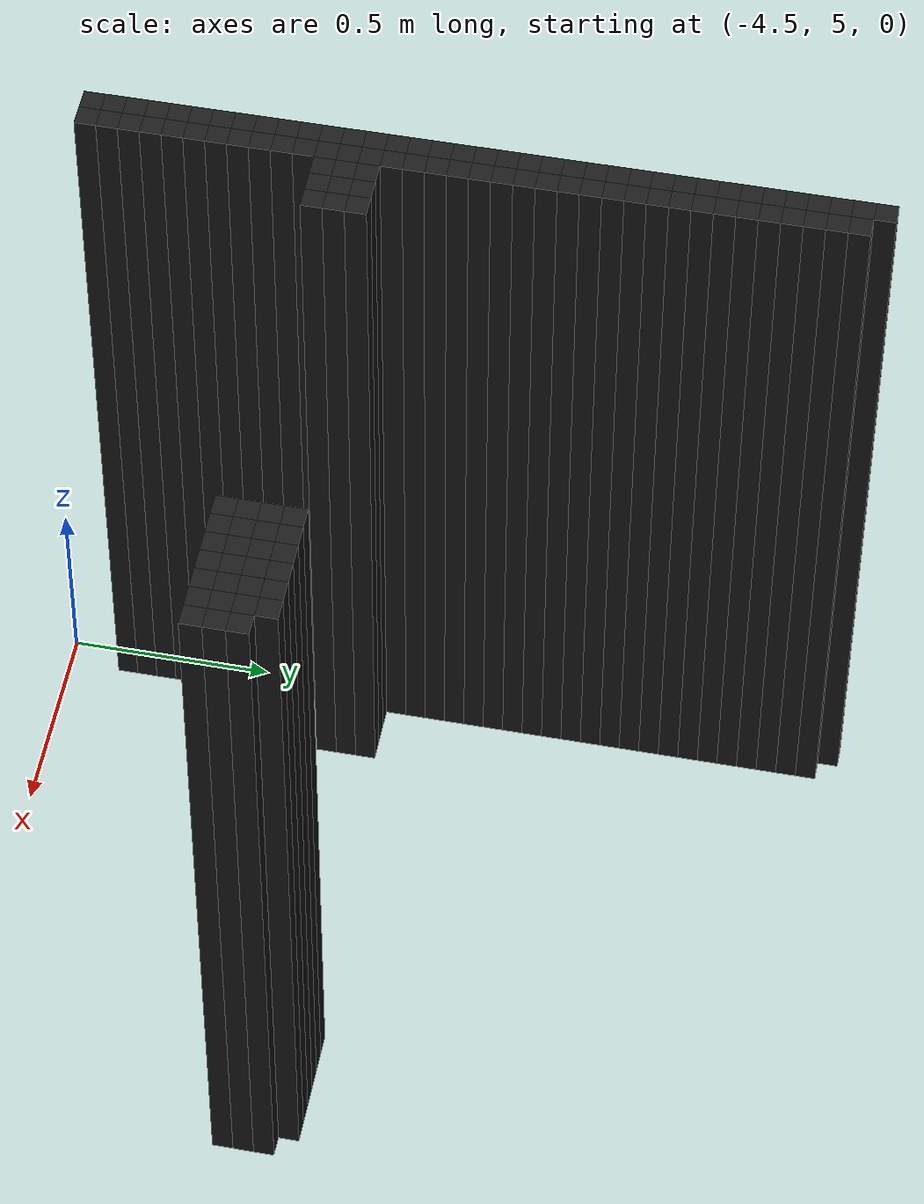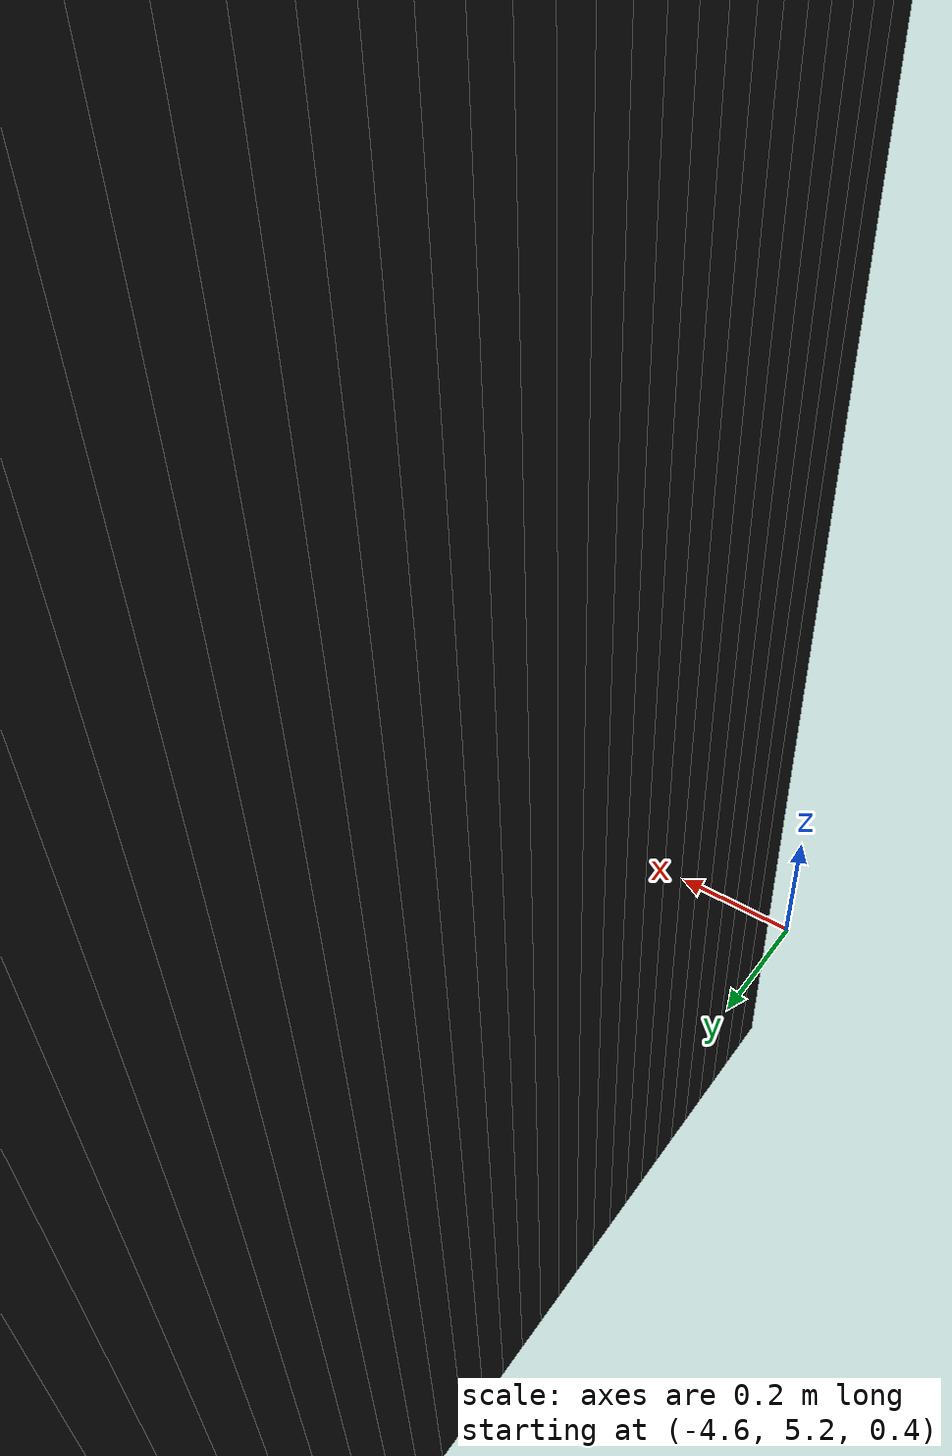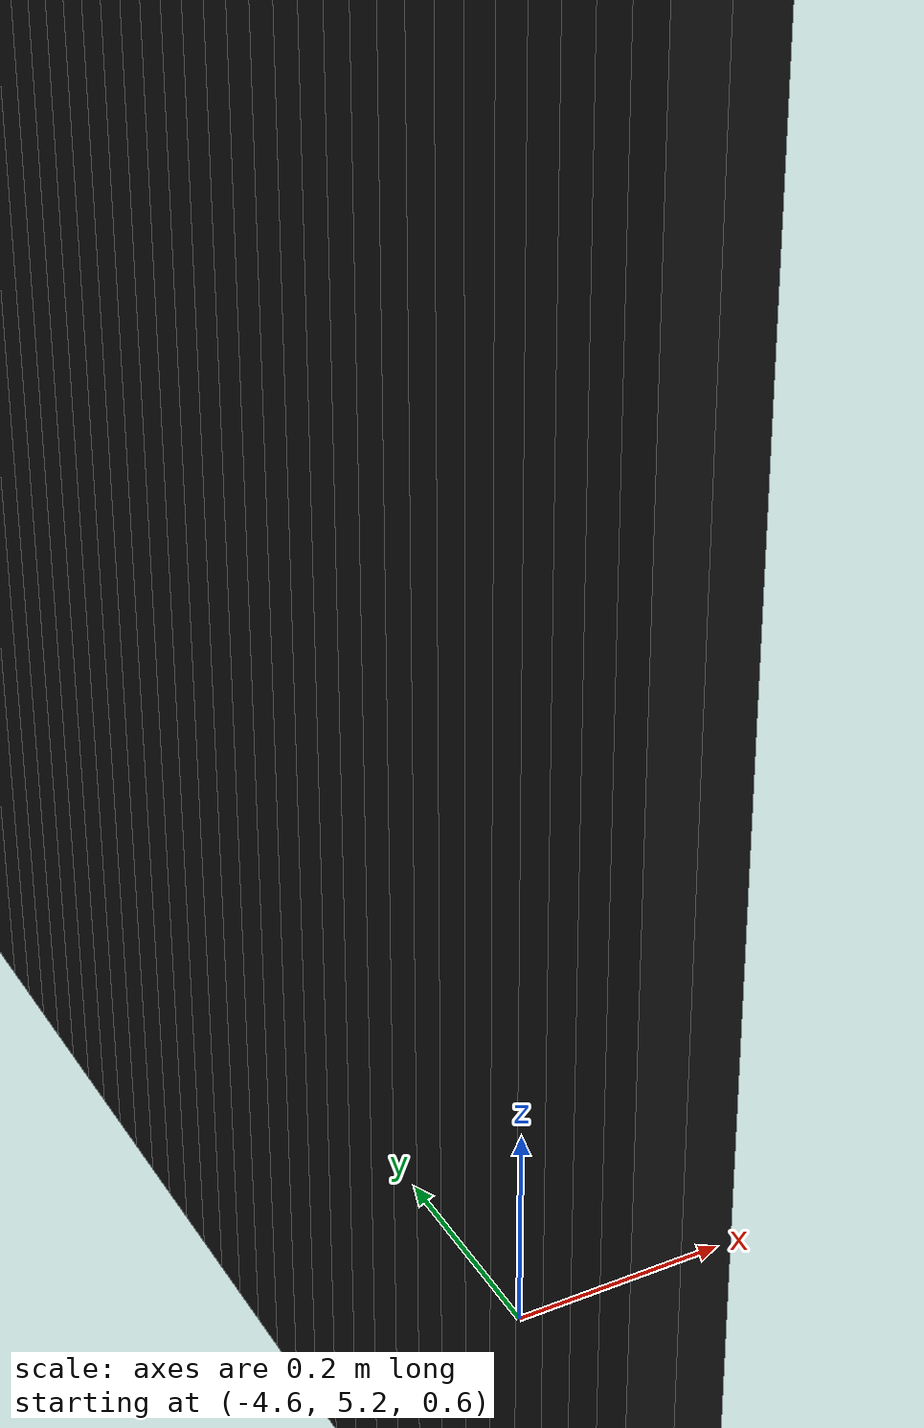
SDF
<sdf version="1.6">
 <model name="obstacle_0_28">
  <pose>-4.51 6.95 1.0 0 0 0</pose>
  <static>true</static>
  <link name="box_link">
   <collision name="box_collision"><geometry><box><size>0.05 0.05 2.0</size></box></geometry></collision>
   <visual name="box_visual">
    <geometry><box><size>0.05 0.05 2.0</size></box></geometry>
    <material><ambient>0 0 0 1</ambient><diffuse>0.1 0.1 0.1 1</diffuse></material>
   </visual>
  </link>
 </model>
 <model name="obstacle_0_29">
  <pose>-4.51 6.8999999999999995 1.0 0 0 0</pose>
  <static>true</static>
  <link name="box_link">
   <collision name="box_collision"><geometry><box><size>0.05 0.05 2.0</size></box></geometry></collision>
   <visual name="box_visual">
    <geometry><box><size>0.05 0.05 2.0</size></box></geometry>
    <material><ambient>0 0 0 1</ambient><diffuse>0.1 0.1 0.1 1</diffuse></material>
   </visual>
  </link>
 </model>
 <model name="obstacle_1_29">
  <pose>-4.46 6.8999999999999995 1.0 0 0 0</pose>
  <static>true</static>
  <link name="box_link">
   <collision name="box_collision"><geometry><box><size>0.05 0.05 2.0</size></box></geometry></collision>
   <visual name="box_visual">
    <geometry><box><size>0.05 0.05 2.0</size></box></geometry>
    <material><ambient>0 0 0 1</ambient><diffuse>0.1 0.1 0.1 1</diffuse></material>
   </visual>
  </link>
 </model>
 <model name="obstacle_0_30">
  <pose>-4.51 6.8500000000000005 1.0 0 0 0</pose>
  <static>true</static>
  <link name="box_link">
   <collision name="box_collision"><geometry><box><size>0.05 0.05 2.0</size></box></geometry></collision>
   <visual name="box_visual">
    <geometry><box><size>0.05 0.05 2.0</size></box></geometry>
    <material><ambient>0 0 0 1</ambient><diffuse>0.1 0.1 0.1 1</diffuse></material>
   </visual>
  </link>
 </model>
 <model name="obstacle_1_30">
  <pose>-4.46 6.8500000000000005 1.0 0 0 0</pose>
  <static>true</static>
  <link name="box_link">
   <collision name="box_collision"><geometry><box><size>0.05 0.05 2.0</size></box></geometry></collision>
   <visual name="box_visual">
    <geometry><box><size>0.05 0.05 2.0</size></box></geometry>
    <material><ambient>0 0 0 1</ambient><diffuse>0.1 0.1 0.1 1</diffuse></material>
   </visual>
  </link>
 </model>
 <model name="obstacle_0_31">
  <pose>-4.51 6.8 1.0 0 0 0</pose>
  <static>true</static>
  <link name="box_link">
   <collision name="box_collision"><geometry><box><size>0.05 0.05 2.0</size></box></geometry></collision>
   <visual name="box_visual">
    <geometry><box><size>0.05 0.05 2.0</size></box></geometry>
    <material><ambient>0 0 0 1</ambient><diffuse>0.1 0.1 0.1 1</diffuse></material>
   </visual>
  </link>
 </model>
 <model name="obstacle_1_31">
  <pose>-4.46 6.8 1.0 0 0 0</pose>
  <static>true</static>
  <link name="box_link">
   <collision name="box_collision"><geometry><box><size>0.05 0.05 2.0</size></box></geometry></collision>
   <visual name="box_visual">
    <geometry><box><size>0.05 0.05 2.0</size></box></geometry>
    <material><ambient>0 0 0 1</ambient><diffuse>0.1 0.1 0.1 1</diffuse></material>
   </visual>
  </link>
 </model>
 <model name="obstacle_0_32">
  <pose>-4.51 6.750000000000001 1.0 0 0 0</pose>
  <static>true</static>
  <link name="box_link">
   <collision name="box_collision"><geometry><box><size>0.05 0.05 2.0</size></box></geometry></collision>
   <visual name="box_visual">
    <geometry><box><size>0.05 0.05 2.0</size></box></geometry>
    <material><ambient>0 0 0 1</ambient><diffuse>0.1 0.1 0.1 1</diffuse></material>
   </visual>
  </link>
 </model>
 <model name="obstacle_1_32">
  <pose>-4.46 6.750000000000001 1.0 0 0 0</pose>
  <static>true</static>
  <link name="box_link">
   <collision name="box_collision"><geometry><box><size>0.05 0.05 2.0</size></box></geometry></collision>
   <visual name="box_visual">
    <geometry><box><size>0.05 0.05 2.0</size></box></geometry>
    <material><ambient>0 0 0 1</ambient><diffuse>0.1 0.1 0.1 1</diffuse></material>
   </visual>
  </link>
 </model>
 <model name="obstacle_0_33">
  <pose>-4.51 6.7 1.0 0 0 0</pose>
  <static>true</static>
  <link name="box_link">
   <collision name="box_collision"><geometry><box><size>0.05 0.05 2.0</size></box></geometry></collision>
   <visual name="box_visual">
    <geometry><box><size>0.05 0.05 2.0</size></box></geometry>
    <material><ambient>0 0 0 1</ambient><diffuse>0.1 0.1 0.1 1</diffuse></material>
   </visual>
  </link>
 </model>
 <model name="obstacle_1_33">
  <pose>-4.46 6.7 1.0 0 0 0</pose>
  <static>true</static>
  <link name="box_link">
   <collision name="box_collision"><geometry><box><size>0.05 0.05 2.0</size></box></geometry></collision>
   <visual name="box_visual">
    <geometry><box><size>0.05 0.05 2.0</size></box></geometry>
    <material><ambient>0 0 0 1</ambient><diffuse>0.1 0.1 0.1 1</diffuse></material>
   </visual>
  </link>
 </model>
 <model name="obstacle_0_34">
  <pose>-4.51 6.6499999999999995 1.0 0 0 0</pose>
  <static>true</static>
  <link name="box_link">
   <collision name="box_collision"><geometry><box><size>0.05 0.05 2.0</size></box></geometry></collision>
   <visual name="box_visual">
    <geometry><box><size>0.05 0.05 2.0</size></box></geometry>
    <material><ambient>0 0 0 1</ambient><diffuse>0.1 0.1 0.1 1</diffuse></material>
   </visual>
  </link>
 </model>
 <model name="obstacle_1_34">
  <pose>-4.46 6.6499999999999995 1.0 0 0 0</pose>
  <static>true</static>
  <link name="box_link">
   <collision name="box_collision"><geometry><box><size>0.05 0.05 2.0</size></box></geometry></collision>
   <visual name="box_visual">
    <geometry><box><size>0.05 0.05 2.0</size></box></geometry>
    <material><ambient>0 0 0 1</ambient><diffuse>0.1 0.1 0.1 1</diffuse></material>
   </visual>
  </link>
 </model>
 <model name="obstacle_0_35">
  <pose>-4.51 6.6000000000000005 1.0 0 0 0</pose>
  <static>true</static>
  <link name="box_link">
   <collision name="box_collision"><geometry><box><size>0.05 0.05 2.0</size></box></geometry></collision>
   <visual name="box_visual">
    <geometry><box><size>0.05 0.05 2.0</size></box></geometry>
    <material><ambient>0 0 0 1</ambient><diffuse>0.1 0.1 0.1 1</diffuse></material>
   </visual>
  </link>
 </model>
 <model name="obstacle_1_35">
  <pose>-4.46 6.6000000000000005 1.0 0 0 0</pose>
  <static>true</static>
  <link name="box_link">
   <collision name="box_collision"><geometry><box><size>0.05 0.05 2.0</size></box></geometry></collision>
   <visual name="box_visual">
    <geometry><box><size>0.05 0.05 2.0</size></box></geometry>
    <material><ambient>0 0 0 1</ambient><diffuse>0.1 0.1 0.1 1</diffuse></material>
   </visual>
  </link>
 </model>
 <model name="obstacle_0_36">
  <pose>-4.51 6.55 1.0 0 0 0</pose>
  <static>true</static>
  <link name="box_link">
   <collision name="box_collision"><geometry><box><size>0.05 0.05 2.0</size></box></geometry></collision>
   <visual name="box_visual">
    <geometry><box><size>0.05 0.05 2.0</size></box></geometry>
    <material><ambient>0 0 0 1</ambient><diffuse>0.1 0.1 0.1 1</diffuse></material>
   </visual>
  </link>
 </model>
 <model name="obstacle_1_36">
  <pose>-4.46 6.55 1.0 0 0 0</pose>
  <static>true</static>
  <link name="box_link">
   <collision name="box_collision"><geometry><box><size>0.05 0.05 2.0</size></box></geometry></collision>
   <visual name="box_visual">
    <geometry><box><size>0.05 0.05 2.0</size></box></geometry>
    <material><ambient>0 0 0 1</ambient><diffuse>0.1 0.1 0.1 1</diffuse></material>
   </visual>
  </link>
 </model>
 <model name="obstacle_0_37">
  <pose>-4.51 6.500000000000001 1.0 0 0 0</pose>
  <static>true</static>
  <link name="box_link">
   <collision name="box_collision"><geometry><box><size>0.05 0.05 2.0</size></box></geometry></collision>
   <visual name="box_visual">
    <geometry><box><size>0.05 0.05 2.0</size></box></geometry>
    <material><ambient>0 0 0 1</ambient><diffuse>0.1 0.1 0.1 1</diffuse></material>
   </visual>
  </link>
 </model>
 <model name="obstacle_1_37">
  <pose>-4.46 6.500000000000001 1.0 0 0 0</pose>
  <static>true</static>
  <link name="box_link">
   <collision name="box_collision"><geometry><box><size>0.05 0.05 2.0</size></box></geometry></collision>
   <visual name="box_visual">
    <geometry><box><size>0.05 0.05 2.0</size></box></geometry>
    <material><ambient>0 0 0 1</ambient><diffuse>0.1 0.1 0.1 1</diffuse></material>
   </visual>
  </link>
 </model>
 <model name="obstacle_0_38">
  <pose>-4.51 6.45 1.0 0 0 0</pose>
  <static>true</static>
  <link name="box_link">
   <collision name="box_collision"><geometry><box><size>0.05 0.05 2.0</size></box></geometry></collision>
   <visual name="box_visual">
    <geometry><box><size>0.05 0.05 2.0</size></box></geometry>
    <material><ambient>0 0 0 1</ambient><diffuse>0.1 0.1 0.1 1</diffuse></material>
   </visual>
  </link>
 </model>
 <model name="obstacle_1_38">
  <pose>-4.46 6.45 1.0 0 0 0</pose>
  <static>true</static>
  <link name="box_link">
   <collision name="box_collision"><geometry><box><size>0.05 0.05 2.0</size></box></geometry></collision>
   <visual name="box_visual">
    <geometry><box><size>0.05 0.05 2.0</size></box></geometry>
    <material><ambient>0 0 0 1</ambient><diffuse>0.1 0.1 0.1 1</diffuse></material>
   </visual>
  </link>
 </model>
 <model name="obstacle_0_39">
  <pose>-4.51 6.3999999999999995 1.0 0 0 0</pose>
  <static>true</static>
  <link name="box_link">
   <collision name="box_collision"><geometry><box><size>0.05 0.05 2.0</size></box></geometry></collision>
   <visual name="box_visual">
    <geometry><box><size>0.05 0.05 2.0</size></box></geometry>
    <material><ambient>0 0 0 1</ambient><diffuse>0.1 0.1 0.1 1</diffuse></material>
   </visual>
  </link>
 </model>
 <model name="obstacle_1_39">
  <pose>-4.46 6.3999999999999995 1.0 0 0 0</pose>
  <static>true</static>
  <link name="box_link">
   <collision name="box_collision"><geometry><box><size>0.05 0.05 2.0</size></box></geometry></collision>
   <visual name="box_visual">
    <geometry><box><size>0.05 0.05 2.0</size></box></geometry>
    <material><ambient>0 0 0 1</ambient><diffuse>0.1 0.1 0.1 1</diffuse></material>
   </visual>
  </link>
 </model>
 <model name="obstacle_0_40">
  <pose>-4.51 6.3500000000000005 1.0 0 0 0</pose>
  <static>true</static>
  <link name="box_link">
   <collision name="box_collision"><geometry><box><size>0.05 0.05 2.0</size></box></geometry></collision>
   <visual name="box_visual">
    <geometry><box><size>0.05 0.05 2.0</size></box></geometry>
    <material><ambient>0 0 0 1</ambient><diffuse>0.1 0.1 0.1 1</diffuse></material>
   </visual>
  </link>
 </model>
 <model name="obstacle_1_40">
  <pose>-4.46 6.3500000000000005 1.0 0 0 0</pose>
  <static>true</static>
  <link name="box_link">
   <collision name="box_collision"><geometry><box><size>0.05 0.05 2.0</size></box></geometry></collision>
   <visual name="box_visual">
    <geometry><box><size>0.05 0.05 2.0</size></box></geometry>
    <material><ambient>0 0 0 1</ambient><diffuse>0.1 0.1 0.1 1</diffuse></material>
   </visual>
  </link>
 </model>
 <model name="obstacle_0_41">
  <pose>-4.51 6.3 1.0 0 0 0</pose>
  <static>true</static>
  <link name="box_link">
   <collision name="box_collision"><geometry><box><size>0.05 0.05 2.0</size></box></geometry></collision>
   <visual name="box_visual">
    <geometry><box><size>0.05 0.05 2.0</size></box></geometry>
    <material><ambient>0 0 0 1</ambient><diffuse>0.1 0.1 0.1 1</diffuse></material>
   </visual>
  </link>
 </model>
 <model name="obstacle_1_41">
  <pose>-4.46 6.3 1.0 0 0 0</pose>
  <static>true</static>
  <link name="box_link">
   <collision name="box_collision"><geometry><box><size>0.05 0.05 2.0</size></box></geometry></collision>
   <visual name="box_visual">
    <geometry><box><size>0.05 0.05 2.0</size></box></geometry>
    <material><ambient>0 0 0 1</ambient><diffuse>0.1 0.1 0.1 1</diffuse></material>
   </visual>
  </link>
 </model>
 <model name="obstacle_0_42">
  <pose>-4.51 6.250000000000001 1.0 0 0 0</pose>
  <static>true</static>
  <link name="box_link">
   <collision name="box_collision"><geometry><box><size>0.05 0.05 2.0</size></box></geometry></collision>
   <visual name="box_visual">
    <geometry><box><size>0.05 0.05 2.0</size></box></geometry>
    <material><ambient>0 0 0 1</ambient><diffuse>0.1 0.1 0.1 1</diffuse></material>
   </visual>
  </link>
 </model>
 <model name="obstacle_1_42">
  <pose>-4.46 6.250000000000001 1.0 0 0 0</pose>
  <static>true</static>
  <link name="box_link">
   <collision name="box_collision"><geometry><box><size>0.05 0.05 2.0</size></box></geometry></collision>
   <visual name="box_visual">
    <geometry><box><size>0.05 0.05 2.0</size></box></geometry>
    <material><ambient>0 0 0 1</ambient><diffuse>0.1 0.1 0.1 1</diffuse></material>
   </visual>
  </link>
 </model>
 <model name="obstacle_0_43">
  <pose>-4.51 6.2 1.0 0 0 0</pose>
  <static>true</static>
  <link name="box_link">
   <collision name="box_collision"><geometry><box><size>0.05 0.05 2.0</size></box></geometry></collision>
   <visual name="box_visual">
    <geometry><box><size>0.05 0.05 2.0</size></box></geometry>
    <material><ambient>0 0 0 1</ambient><diffuse>0.1 0.1 0.1 1</diffuse></material>
   </visual>
  </link>
 </model>
 <model name="obstacle_1_43">
  <pose>-4.46 6.2 1.0 0 0 0</pose>
  <static>true</static>
  <link name="box_link">
   <collision name="box_collision"><geometry><box><size>0.05 0.05 2.0</size></box></geometry></collision>
   <visual name="box_visual">
    <geometry><box><size>0.05 0.05 2.0</size></box></geometry>
    <material><ambient>0 0 0 1</ambient><diffuse>0.1 0.1 0.1 1</diffuse></material>
   </visual>
  </link>
 </model>
 <model name="obstacle_0_44">
  <pose>-4.51 6.1499999999999995 1.0 0 0 0</pose>
  <static>true</static>
  <link name="box_link">
   <collision name="box_collision"><geometry><box><size>0.05 0.05 2.0</size></box></geometry></collision>
   <visual name="box_visual">
    <geometry><box><size>0.05 0.05 2.0</size></box></geometry>
    <material><ambient>0 0 0 1</ambient><diffuse>0.1 0.1 0.1 1</diffuse></material>
   </visual>
  </link>
 </model>
 <model name="obstacle_1_44">
  <pose>-4.46 6.1499999999999995 1.0 0 0 0</pose>
  <static>true</static>
  <link name="box_link">
   <collision name="box_collision"><geometry><box><size>0.05 0.05 2.0</size></box></geometry></collision>
   <visual name="box_visual">
    <geometry><box><size>0.05 0.05 2.0</size></box></geometry>
    <material><ambient>0 0 0 1</ambient><diffuse>0.1 0.1 0.1 1</diffuse></material>
   </visual>
  </link>
 </model>
 <model name="obstacle_0_45">
  <pose>-4.51 6.1000000000000005 1.0 0 0 0</pose>
  <static>true</static>
  <link name="box_link">
   <collision name="box_collision"><geometry><box><size>0.05 0.05 2.0</size></box></geometry></collision>
   <visual name="box_visual">
    <geometry><box><size>0.05 0.05 2.0</size></box></geometry>
    <material><ambient>0 0 0 1</ambient><diffuse>0.1 0.1 0.1 1</diffuse></material>
   </visual>
  </link>
 </model>
 <model name="obstacle_1_45">
  <pose>-4.46 6.1000000000000005 1.0 0 0 0</pose>
  <static>true</static>
  <link name="box_link">
   <collision name="box_collision"><geometry><box><size>0.05 0.05 2.0</size></box></geometry></collision>
   <visual name="box_visual">
    <geometry><box><size>0.05 0.05 2.0</size></box></geometry>
    <material><ambient>0 0 0 1</ambient><diffuse>0.1 0.1 0.1 1</diffuse></material>
   </visual>
  </link>
 </model>
 <model name="obstacle_0_46">
  <pose>-4.51 6.05 1.0 0 0 0</pose>
  <static>true</static>
  <link name="box_link">
   <collision name="box_collision"><geometry><box><size>0.05 0.05 2.0</size></box></geometry></collision>
   <visual name="box_visual">
    <geometry><box><size>0.05 0.05 2.0</size></box></geometry>
    <material><ambient>0 0 0 1</ambient><diffuse>0.1 0.1 0.1 1</diffuse></material>
   </visual>
  </link>
 </model>
 <model name="obstacle_1_46">
  <pose>-4.46 6.05 1.0 0 0 0</pose>
  <static>true</static>
  <link name="box_link">
   <collision name="box_collision"><geometry><box><size>0.05 0.05 2.0</size></box></geometry></collision>
   <visual name="box_visual">
    <geometry><box><size>0.05 0.05 2.0</size></box></geometry>
    <material><ambient>0 0 0 1</ambient><diffuse>0.1 0.1 0.1 1</diffuse></material>
   </visual>
  </link>
 </model>
 <model name="obstacle_0_47">
  <pose>-4.51 6.000000000000001 1.0 0 0 0</pose>
  <static>true</static>
  <link name="box_link">
   <collision name="box_collision"><geometry><box><size>0.05 0.05 2.0</size></box></geometry></collision>
   <visual name="box_visual">
    <geometry><box><size>0.05 0.05 2.0</size></box></geometry>
    <material><ambient>0 0 0 1</ambient><diffuse>0.1 0.1 0.1 1</diffuse></material>
   </visual>
  </link>
 </model>
 <model name="obstacle_1_47">
  <pose>-4.46 6.000000000000001 1.0 0 0 0</pose>
  <static>true</static>
  <link name="box_link">
   <collision name="box_collision"><geometry><box><size>0.05 0.05 2.0</size></box></geometry></collision>
   <visual name="box_visual">
    <geometry><box><size>0.05 0.05 2.0</size></box></geometry>
    <material><ambient>0 0 0 1</ambient><diffuse>0.1 0.1 0.1 1</diffuse></material>
   </visual>
  </link>
 </model>
 <model name="obstacle_0_48">
  <pose>-4.51 5.95 1.0 0 0 0</pose>
  <static>true</static>
  <link name="box_link">
   <collision name="box_collision"><geometry><box><size>0.05 0.05 2.0</size></box></geometry></collision>
   <visual name="box_visual">
    <geometry><box><size>0.05 0.05 2.0</size></box></geometry>
    <material><ambient>0 0 0 1</ambient><diffuse>0.1 0.1 0.1 1</diffuse></material>
   </visual>
  </link>
 </model>
 <model name="obstacle_1_48">
  <pose>-4.46 5.95 1.0 0 0 0</pose>
  <static>true</static>
  <link name="box_link">
   <collision name="box_collision"><geometry><box><size>0.05 0.05 2.0</size></box></geometry></collision>
   <visual name="box_visual">
    <geometry><box><size>0.05 0.05 2.0</size></box></geometry>
    <material><ambient>0 0 0 1</ambient><diffuse>0.1 0.1 0.1 1</diffuse></material>
   </visual>
  </link>
 </model>
 <model name="obstacle_0_49">
  <pose>-4.51 5.8999999999999995 1.0 0 0 0</pose>
  <static>true</static>
  <link name="box_link">
   <collision name="box_collision"><geometry><box><size>0.05 0.05 2.0</size></box></geometry></collision>
   <visual name="box_visual">
    <geometry><box><size>0.05 0.05 2.0</size></box></geometry>
    <material><ambient>0 0 0 1</ambient><diffuse>0.1 0.1 0.1 1</diffuse></material>
   </visual>
  </link>
 </model>
 <model name="obstacle_1_49">
  <pose>-4.46 5.8999999999999995 1.0 0 0 0</pose>
  <static>true</static>
  <link name="box_link">
   <collision name="box_collision"><geometry><box><size>0.05 0.05 2.0</size></box></geometry></collision>
   <visual name="box_visual">
    <geometry><box><size>0.05 0.05 2.0</size></box></geometry>
    <material><ambient>0 0 0 1</ambient><diffuse>0.1 0.1 0.1 1</diffuse></material>
   </visual>
  </link>
 </model>
 <model name="obstacle_0_50">
  <pose>-4.51 5.8500000000000005 1.0 0 0 0</pose>
  <static>true</static>
  <link name="box_link">
   <collision name="box_collision"><geometry><box><size>0.05 0.05 2.0</size></box></geometry></collision>
   <visual name="box_visual">
    <geometry><box><size>0.05 0.05 2.0</size></box></geometry>
    <material><ambient>0 0 0 1</ambient><diffuse>0.1 0.1 0.1 1</diffuse></material>
   </visual>
  </link>
 </model>
 <model name="obstacle_1_50">
  <pose>-4.46 5.8500000000000005 1.0 0 0 0</pose>
  <static>true</static>
  <link name="box_link">
   <collision name="box_collision"><geometry><box><size>0.05 0.05 2.0</size></box></geometry></collision>
   <visual name="box_visual">
    <geometry><box><size>0.05 0.05 2.0</size></box></geometry>
    <material><ambient>0 0 0 1</ambient><diffuse>0.1 0.1 0.1 1</diffuse></material>
   </visual>
  </link>
 </model>
 <model name="obstacle_22_50">
  <pose>-3.4099999999999997 5.8500000000000005 1.0 0 0 0</pose>
  <static>true</static>
  <link name="box_link">
   <collision name="box_collision"><geometry><box><size>0.05 0.05 2.0</size></box></geometry></collision>
   <visual name="box_visual">
    <geometry><box><size>0.05 0.05 2.0</size></box></geometry>
    <material><ambient>0 0 0 1</ambient><diffuse>0.1 0.1 0.1 1</diffuse></material>
   </visual>
  </link>
 </model>
 <model name="obstacle_23_50">
  <pose>-3.3599999999999994 5.8500000000000005 1.0 0 0 0</pose>
  <static>true</static>
  <link name="box_link">
   <collision name="box_collision"><geometry><box><size>0.05 0.05 2.0</size></box></geometry></collision>
   <visual name="box_visual">
    <geometry><box><size>0.05 0.05 2.0</size></box></geometry>
    <material><ambient>0 0 0 1</ambient><diffuse>0.1 0.1 0.1 1</diffuse></material>
   </visual>
  </link>
 </model>
 <model name="obstacle_24_50">
  <pose>-3.3099999999999996 5.8500000000000005 1.0 0 0 0</pose>
  <static>true</static>
  <link name="box_link">
   <collision name="box_collision"><geometry><box><size>0.05 0.05 2.0</size></box></geometry></collision>
   <visual name="box_visual">
    <geometry><box><size>0.05 0.05 2.0</size></box></geometry>
    <material><ambient>0 0 0 1</ambient><diffuse>0.1 0.1 0.1 1</diffuse></material>
   </visual>
  </link>
 </model>
 <model name="obstacle_25_50">
  <pose>-3.26 5.8500000000000005 1.0 0 0 0</pose>
  <static>true</static>
  <link name="box_link">
   <collision name="box_collision"><geometry><box><size>0.05 0.05 2.0</size></box></geometry></collision>
   <visual name="box_visual">
    <geometry><box><size>0.05 0.05 2.0</size></box></geometry>
    <material><ambient>0 0 0 1</ambient><diffuse>0.1 0.1 0.1 1</diffuse></material>
   </visual>
  </link>
 </model>
 <model name="obstacle_26_50">
  <pose>-3.21 5.8500000000000005 1.0 0 0 0</pose>
  <static>true</static>
  <link name="box_link">
   <collision name="box_collision"><geometry><box><size>0.05 0.05 2.0</size></box></geometry></collision>
   <visual name="box_visual">
    <geometry><box><size>0.05 0.05 2.0</size></box></geometry>
    <material><ambient>0 0 0 1</ambient><diffuse>0.1 0.1 0.1 1</diffuse></material>
   </visual>
  </link>
 </model>
 <model name="obstacle_27_50">
  <pose>-3.1599999999999997 5.8500000000000005 1.0 0 0 0</pose>
  <static>true</static>
  <link name="box_link">
   <collision name="box_collision"><geometry><box><size>0.05 0.05 2.0</size></box></geometry></collision>
   <visual name="box_visual">
    <geometry><box><size>0.05 0.05 2.0</size></box></geometry>
    <material><ambient>0 0 0 1</ambient><diffuse>0.1 0.1 0.1 1</diffuse></material>
   </visual>
  </link>
 </model>
 <model name="obstacle_0_51">
  <pose>-4.51 5.8 1.0 0 0 0</pose>
  <static>true</static>
  <link name="box_link">
   <collision name="box_collision"><geometry><box><size>0.05 0.05 2.0</size></box></geometry></collision>
   <visual name="box_visual">
    <geometry><box><size>0.05 0.05 2.0</size></box></geometry>
    <material><ambient>0 0 0 1</ambient><diffuse>0.1 0.1 0.1 1</diffuse></material>
   </visual>
  </link>
 </model>
 <model name="obstacle_1_51">
  <pose>-4.46 5.8 1.0 0 0 0</pose>
  <static>true</static>
  <link name="box_link">
   <collision name="box_collision"><geometry><box><size>0.05 0.05 2.0</size></box></geometry></collision>
   <visual name="box_visual">
    <geometry><box><size>0.05 0.05 2.0</size></box></geometry>
    <material><ambient>0 0 0 1</ambient><diffuse>0.1 0.1 0.1 1</diffuse></material>
   </visual>
  </link>
 </model>
 <model name="obstacle_2_51">
  <pose>-4.41 5.8 1.0 0 0 0</pose>
  <static>true</static>
  <link name="box_link">
   <collision name="box_collision"><geometry><box><size>0.05 0.05 2.0</size></box></geometry></collision>
   <visual name="box_visual">
    <geometry><box><size>0.05 0.05 2.0</size></box></geometry>
    <material><ambient>0 0 0 1</ambient><diffuse>0.1 0.1 0.1 1</diffuse></material>
   </visual>
  </link>
 </model>
 <model name="obstacle_3_51">
  <pose>-4.359999999999999 5.8 1.0 0 0 0</pose>
  <static>true</static>
  <link name="box_link">
   <collision name="box_collision"><geometry><box><size>0.05 0.05 2.0</size></box></geometry></collision>
   <visual name="box_visual">
    <geometry><box><size>0.05 0.05 2.0</size></box></geometry>
    <material><ambient>0 0 0 1</ambient><diffuse>0.1 0.1 0.1 1</diffuse></material>
   </visual>
  </link>
 </model>
 <model name="obstacle_4_51">
  <pose>-4.31 5.8 1.0 0 0 0</pose>
  <static>true</static>
  <link name="box_link">
   <collision name="box_collision"><geometry><box><size>0.05 0.05 2.0</size></box></geometry></collision>
   <visual name="box_visual">
    <geometry><box><size>0.05 0.05 2.0</size></box></geometry>
    <material><ambient>0 0 0 1</ambient><diffuse>0.1 0.1 0.1 1</diffuse></material>
   </visual>
  </link>
 </model>
 <model name="obstacle_22_51">
  <pose>-3.4099999999999997 5.8 1.0 0 0 0</pose>
  <static>true</static>
  <link name="box_link">
   <collision name="box_collision"><geometry><box><size>0.05 0.05 2.0</size></box></geometry></collision>
   <visual name="box_visual">
    <geometry><box><size>0.05 0.05 2.0</size></box></geometry>
    <material><ambient>0 0 0 1</ambient><diffuse>0.1 0.1 0.1 1</diffuse></material>
   </visual>
  </link>
 </model>
 <model name="obstacle_23_51">
  <pose>-3.3599999999999994 5.8 1.0 0 0 0</pose>
  <static>true</static>
  <link name="box_link">
   <collision name="box_collision"><geometry><box><size>0.05 0.05 2.0</size></box></geometry></collision>
   <visual name="box_visual">
    <geometry><box><size>0.05 0.05 2.0</size></box></geometry>
    <material><ambient>0 0 0 1</ambient><diffuse>0.1 0.1 0.1 1</diffuse></material>
   </visual>
  </link>
 </model>
 <model name="obstacle_24_51">
  <pose>-3.3099999999999996 5.8 1.0 0 0 0</pose>
  <static>true</static>
  <link name="box_link">
   <collision name="box_collision"><geometry><box><size>0.05 0.05 2.0</size></box></geometry></collision>
   <visual name="box_visual">
    <geometry><box><size>0.05 0.05 2.0</size></box></geometry>
    <material><ambient>0 0 0 1</ambient><diffuse>0.1 0.1 0.1 1</diffuse></material>
   </visual>
  </link>
 </model>
 <model name="obstacle_25_51">
  <pose>-3.26 5.8 1.0 0 0 0</pose>
  <static>true</static>
  <link name="box_link">
   <collision name="box_collision"><geometry><box><size>0.05 0.05 2.0</size></box></geometry></collision>
   <visual name="box_visual">
    <geometry><box><size>0.05 0.05 2.0</size></box></geometry>
    <material><ambient>0 0 0 1</ambient><diffuse>0.1 0.1 0.1 1</diffuse></material>
   </visual>
  </link>
 </model>
 <model name="obstacle_26_51">
  <pose>-3.21 5.8 1.0 0 0 0</pose>
  <static>true</static>
  <link name="box_link">
   <collision name="box_collision"><geometry><box><size>0.05 0.05 2.0</size></box></geometry></collision>
   <visual name="box_visual">
    <geometry><box><size>0.05 0.05 2.0</size></box></geometry>
    <material><ambient>0 0 0 1</ambient><diffuse>0.1 0.1 0.1 1</diffuse></material>
   </visual>
  </link>
 </model>
 <model name="obstacle_27_51">
  <pose>-3.1599999999999997 5.8 1.0 0 0 0</pose>
  <static>true</static>
  <link name="box_link">
   <collision name="box_collision"><geometry><box><size>0.05 0.05 2.0</size></box></geometry></collision>
   <visual name="box_visual">
    <geometry><box><size>0.05 0.05 2.0</size></box></geometry>
    <material><ambient>0 0 0 1</ambient><diffuse>0.1 0.1 0.1 1</diffuse></material>
   </visual>
  </link>
 </model>
 <model name="obstacle_28_51">
  <pose>-3.1099999999999994 5.8 1.0 0 0 0</pose>
  <static>true</static>
  <link name="box_link">
   <collision name="box_collision"><geometry><box><size>0.05 0.05 2.0</size></box></geometry></collision>
   <visual name="box_visual">
    <geometry><box><size>0.05 0.05 2.0</size></box></geometry>
    <material><ambient>0 0 0 1</ambient><diffuse>0.1 0.1 0.1 1</diffuse></material>
   </visual>
  </link>
 </model>
 <model name="obstacle_0_52">
  <pose>-4.51 5.75 1.0 0 0 0</pose>
  <static>true</static>
  <link name="box_link">
   <collision name="box_collision"><geometry><box><size>0.05 0.05 2.0</size></box></geometry></collision>
   <visual name="box_visual">
    <geometry><box><size>0.05 0.05 2.0</size></box></geometry>
    <material><ambient>0 0 0 1</ambient><diffuse>0.1 0.1 0.1 1</diffuse></material>
   </visual>
  </link>
 </model>
 <model name="obstacle_1_52">
  <pose>-4.46 5.75 1.0 0 0 0</pose>
  <static>true</static>
  <link name="box_link">
   <collision name="box_collision"><geometry><box><size>0.05 0.05 2.0</size></box></geometry></collision>
   <visual name="box_visual">
    <geometry><box><size>0.05 0.05 2.0</size></box></geometry>
    <material><ambient>0 0 0 1</ambient><diffuse>0.1 0.1 0.1 1</diffuse></material>
   </visual>
  </link>
 </model>
 <model name="obstacle_2_52">
  <pose>-4.41 5.75 1.0 0 0 0</pose>
  <static>true</static>
  <link name="box_link">
   <collision name="box_collision"><geometry><box><size>0.05 0.05 2.0</size></box></geometry></collision>
   <visual name="box_visual">
    <geometry><box><size>0.05 0.05 2.0</size></box></geometry>
    <material><ambient>0 0 0 1</ambient><diffuse>0.1 0.1 0.1 1</diffuse></material>
   </visual>
  </link>
 </model>
 <model name="obstacle_3_52">
  <pose>-4.359999999999999 5.75 1.0 0 0 0</pose>
  <static>true</static>
  <link name="box_link">
   <collision name="box_collision"><geometry><box><size>0.05 0.05 2.0</size></box></geometry></collision>
   <visual name="box_visual">
    <geometry><box><size>0.05 0.05 2.0</size></box></geometry>
    <material><ambient>0 0 0 1</ambient><diffuse>0.1 0.1 0.1 1</diffuse></material>
   </visual>
  </link>
 </model>
 <model name="obstacle_4_52">
  <pose>-4.31 5.75 1.0 0 0 0</pose>
  <static>true</static>
  <link name="box_link">
   <collision name="box_collision"><geometry><box><size>0.05 0.05 2.0</size></box></geometry></collision>
   <visual name="box_visual">
    <geometry><box><size>0.05 0.05 2.0</size></box></geometry>
    <material><ambient>0 0 0 1</ambient><diffuse>0.1 0.1 0.1 1</diffuse></material>
   </visual>
  </link>
 </model>
 <model name="obstacle_22_52">
  <pose>-3.4099999999999997 5.75 1.0 0 0 0</pose>
  <static>true</static>
  <link name="box_link">
   <collision name="box_collision"><geometry><box><size>0.05 0.05 2.0</size></box></geometry></collision>
   <visual name="box_visual">
    <geometry><box><size>0.05 0.05 2.0</size></box></geometry>
    <material><ambient>0 0 0 1</ambient><diffuse>0.1 0.1 0.1 1</diffuse></material>
   </visual>
  </link>
 </model>
 <model name="obstacle_23_52">
  <pose>-3.3599999999999994 5.75 1.0 0 0 0</pose>
  <static>true</static>
  <link name="box_link">
   <collision name="box_collision"><geometry><box><size>0.05 0.05 2.0</size></box></geometry></collision>
   <visual name="box_visual">
    <geometry><box><size>0.05 0.05 2.0</size></box></geometry>
    <material><ambient>0 0 0 1</ambient><diffuse>0.1 0.1 0.1 1</diffuse></material>
   </visual>
  </link>
 </model>
 <model name="obstacle_24_52">
  <pose>-3.3099999999999996 5.75 1.0 0 0 0</pose>
  <static>true</static>
  <link name="box_link">
   <collision name="box_collision"><geometry><box><size>0.05 0.05 2.0</size></box></geometry></collision>
   <visual name="box_visual">
    <geometry><box><size>0.05 0.05 2.0</size></box></geometry>
    <material><ambient>0 0 0 1</ambient><diffuse>0.1 0.1 0.1 1</diffuse></material>
   </visual>
  </link>
 </model>
 <model name="obstacle_25_52">
  <pose>-3.26 5.75 1.0 0 0 0</pose>
  <static>true</static>
  <link name="box_link">
   <collision name="box_collision"><geometry><box><size>0.05 0.05 2.0</size></box></geometry></collision>
   <visual name="box_visual">
    <geometry><box><size>0.05 0.05 2.0</size></box></geometry>
    <material><ambient>0 0 0 1</ambient><diffuse>0.1 0.1 0.1 1</diffuse></material>
   </visual>
  </link>
 </model>
 <model name="obstacle_26_52">
  <pose>-3.21 5.75 1.0 0 0 0</pose>
  <static>true</static>
  <link name="box_link">
   <collision name="box_collision"><geometry><box><size>0.05 0.05 2.0</size></box></geometry></collision>
   <visual name="box_visual">
    <geometry><box><size>0.05 0.05 2.0</size></box></geometry>
    <material><ambient>0 0 0 1</ambient><diffuse>0.1 0.1 0.1 1</diffuse></material>
   </visual>
  </link>
 </model>
 <model name="obstacle_27_52">
  <pose>-3.1599999999999997 5.75 1.0 0 0 0</pose>
  <static>true</static>
  <link name="box_link">
   <collision name="box_collision"><geometry><box><size>0.05 0.05 2.0</size></box></geometry></collision>
   <visual name="box_visual">
    <geometry><box><size>0.05 0.05 2.0</size></box></geometry>
    <material><ambient>0 0 0 1</ambient><diffuse>0.1 0.1 0.1 1</diffuse></material>
   </visual>
  </link>
 </model>
 <model name="obstacle_28_52">
  <pose>-3.1099999999999994 5.75 1.0 0 0 0</pose>
  <static>true</static>
  <link name="box_link">
   <collision name="box_collision"><geometry><box><size>0.05 0.05 2.0</size></box></geometry></collision>
   <visual name="box_visual">
    <geometry><box><size>0.05 0.05 2.0</size></box></geometry>
    <material><ambient>0 0 0 1</ambient><diffuse>0.1 0.1 0.1 1</diffuse></material>
   </visual>
  </link>
 </model>
 <model name="obstacle_0_53">
  <pose>-4.51 5.7 1.0 0 0 0</pose>
  <static>true</static>
  <link name="box_link">
   <collision name="box_collision"><geometry><box><size>0.05 0.05 2.0</size></box></geometry></collision>
   <visual name="box_visual">
    <geometry><box><size>0.05 0.05 2.0</size></box></geometry>
    <material><ambient>0 0 0 1</ambient><diffuse>0.1 0.1 0.1 1</diffuse></material>
   </visual>
  </link>
 </model>
 <model name="obstacle_1_53">
  <pose>-4.46 5.7 1.0 0 0 0</pose>
  <static>true</static>
  <link name="box_link">
   <collision name="box_collision"><geometry><box><size>0.05 0.05 2.0</size></box></geometry></collision>
   <visual name="box_visual">
    <geometry><box><size>0.05 0.05 2.0</size></box></geometry>
    <material><ambient>0 0 0 1</ambient><diffuse>0.1 0.1 0.1 1</diffuse></material>
   </visual>
  </link>
 </model>
 <model name="obstacle_2_53">
  <pose>-4.41 5.7 1.0 0 0 0</pose>
  <static>true</static>
  <link name="box_link">
   <collision name="box_collision"><geometry><box><size>0.05 0.05 2.0</size></box></geometry></collision>
   <visual name="box_visual">
    <geometry><box><size>0.05 0.05 2.0</size></box></geometry>
    <material><ambient>0 0 0 1</ambient><diffuse>0.1 0.1 0.1 1</diffuse></material>
   </visual>
  </link>
 </model>
 <model name="obstacle_3_53">
  <pose>-4.359999999999999 5.7 1.0 0 0 0</pose>
  <static>true</static>
  <link name="box_link">
   <collision name="box_collision"><geometry><box><size>0.05 0.05 2.0</size></box></geometry></collision>
   <visual name="box_visual">
    <geometry><box><size>0.05 0.05 2.0</size></box></geometry>
    <material><ambient>0 0 0 1</ambient><diffuse>0.1 0.1 0.1 1</diffuse></material>
   </visual>
  </link>
 </model>
 <model name="obstacle_4_53">
  <pose>-4.31 5.7 1.0 0 0 0</pose>
  <static>true</static>
  <link name="box_link">
   <collision name="box_collision"><geometry><box><size>0.05 0.05 2.0</size></box></geometry></collision>
   <visual name="box_visual">
    <geometry><box><size>0.05 0.05 2.0</size></box></geometry>
    <material><ambient>0 0 0 1</ambient><diffuse>0.1 0.1 0.1 1</diffuse></material>
   </visual>
  </link>
 </model>
 <model name="obstacle_22_53">
  <pose>-3.4099999999999997 5.7 1.0 0 0 0</pose>
  <static>true</static>
  <link name="box_link">
   <collision name="box_collision"><geometry><box><size>0.05 0.05 2.0</size></box></geometry></collision>
   <visual name="box_visual">
    <geometry><box><size>0.05 0.05 2.0</size></box></geometry>
    <material><ambient>0 0 0 1</ambient><diffuse>0.1 0.1 0.1 1</diffuse></material>
   </visual>
  </link>
 </model>
 <model name="obstacle_23_53">
  <pose>-3.3599999999999994 5.7 1.0 0 0 0</pose>
  <static>true</static>
  <link name="box_link">
   <collision name="box_collision"><geometry><box><size>0.05 0.05 2.0</size></box></geometry></collision>
   <visual name="box_visual">
    <geometry><box><size>0.05 0.05 2.0</size></box></geometry>
    <material><ambient>0 0 0 1</ambient><diffuse>0.1 0.1 0.1 1</diffuse></material>
   </visual>
  </link>
 </model>
 <model name="obstacle_24_53">
  <pose>-3.3099999999999996 5.7 1.0 0 0 0</pose>
  <static>true</static>
  <link name="box_link">
   <collision name="box_collision"><geometry><box><size>0.05 0.05 2.0</size></box></geometry></collision>
   <visual name="box_visual">
    <geometry><box><size>0.05 0.05 2.0</size></box></geometry>
    <material><ambient>0 0 0 1</ambient><diffuse>0.1 0.1 0.1 1</diffuse></material>
   </visual>
  </link>
 </model>
 <model name="obstacle_25_53">
  <pose>-3.26 5.7 1.0 0 0 0</pose>
  <static>true</static>
  <link name="box_link">
   <collision name="box_collision"><geometry><box><size>0.05 0.05 2.0</size></box></geometry></collision>
   <visual name="box_visual">
    <geometry><box><size>0.05 0.05 2.0</size></box></geometry>
    <material><ambient>0 0 0 1</ambient><diffuse>0.1 0.1 0.1 1</diffuse></material>
   </visual>
  </link>
 </model>
 <model name="obstacle_26_53">
  <pose>-3.21 5.7 1.0 0 0 0</pose>
  <static>true</static>
  <link name="box_link">
   <collision name="box_collision"><geometry><box><size>0.05 0.05 2.0</size></box></geometry></collision>
   <visual name="box_visual">
    <geometry><box><size>0.05 0.05 2.0</size></box></geometry>
    <material><ambient>0 0 0 1</ambient><diffuse>0.1 0.1 0.1 1</diffuse></material>
   </visual>
  </link>
 </model>
 <model name="obstacle_27_53">
  <pose>-3.1599999999999997 5.7 1.0 0 0 0</pose>
  <static>true</static>
  <link name="box_link">
   <collision name="box_collision"><geometry><box><size>0.05 0.05 2.0</size></box></geometry></collision>
   <visual name="box_visual">
    <geometry><box><size>0.05 0.05 2.0</size></box></geometry>
    <material><ambient>0 0 0 1</ambient><diffuse>0.1 0.1 0.1 1</diffuse></material>
   </visual>
  </link>
 </model>
 <model name="obstacle_28_53">
  <pose>-3.1099999999999994 5.7 1.0 0 0 0</pose>
  <static>true</static>
  <link name="box_link">
   <collision name="box_collision"><geometry><box><size>0.05 0.05 2.0</size></box></geometry></collision>
   <visual name="box_visual">
    <geometry><box><size>0.05 0.05 2.0</size></box></geometry>
    <material><ambient>0 0 0 1</ambient><diffuse>0.1 0.1 0.1 1</diffuse></material>
   </visual>
  </link>
 </model>
 <model name="obstacle_0_54">
  <pose>-4.51 5.65 1.0 0 0 0</pose>
  <static>true</static>
  <link name="box_link">
   <collision name="box_collision"><geometry><box><size>0.05 0.05 2.0</size></box></geometry></collision>
   <visual name="box_visual">
    <geometry><box><size>0.05 0.05 2.0</size></box></geometry>
    <material><ambient>0 0 0 1</ambient><diffuse>0.1 0.1 0.1 1</diffuse></material>
   </visual>
  </link>
 </model>
 <model name="obstacle_1_54">
  <pose>-4.46 5.65 1.0 0 0 0</pose>
  <static>true</static>
  <link name="box_link">
   <collision name="box_collision"><geometry><box><size>0.05 0.05 2.0</size></box></geometry></collision>
   <visual name="box_visual">
    <geometry><box><size>0.05 0.05 2.0</size></box></geometry>
    <material><ambient>0 0 0 1</ambient><diffuse>0.1 0.1 0.1 1</diffuse></material>
   </visual>
  </link>
 </model>
 <model name="obstacle_0_55">
  <pose>-4.51 5.6000000000000005 1.0 0 0 0</pose>
  <static>true</static>
  <link name="box_link">
   <collision name="box_collision"><geometry><box><size>0.05 0.05 2.0</size></box></geometry></collision>
   <visual name="box_visual">
    <geometry><box><size>0.05 0.05 2.0</size></box></geometry>
    <material><ambient>0 0 0 1</ambient><diffuse>0.1 0.1 0.1 1</diffuse></material>
   </visual>
  </link>
 </model>
 <model name="obstacle_1_55">
  <pose>-4.46 5.6000000000000005 1.0 0 0 0</pose>
  <static>true</static>
  <link name="box_link">
   <collision name="box_collision"><geometry><box><size>0.05 0.05 2.0</size></box></geometry></collision>
   <visual name="box_visual">
    <geometry><box><size>0.05 0.05 2.0</size></box></geometry>
    <material><ambient>0 0 0 1</ambient><diffuse>0.1 0.1 0.1 1</diffuse></material>
   </visual>
  </link>
 </model>
 <model name="obstacle_0_56">
  <pose>-4.51 5.55 1.0 0 0 0</pose>
  <static>true</static>
  <link name="box_link">
   <collision name="box_collision"><geometry><box><size>0.05 0.05 2.0</size></box></geometry></collision>
   <visual name="box_visual">
    <geometry><box><size>0.05 0.05 2.0</size></box></geometry>
    <material><ambient>0 0 0 1</ambient><diffuse>0.1 0.1 0.1 1</diffuse></material>
   </visual>
  </link>
 </model>
 <model name="obstacle_1_56">
  <pose>-4.46 5.55 1.0 0 0 0</pose>
  <static>true</static>
  <link name="box_link">
   <collision name="box_collision"><geometry><box><size>0.05 0.05 2.0</size></box></geometry></collision>
   <visual name="box_visual">
    <geometry><box><size>0.05 0.05 2.0</size></box></geometry>
    <material><ambient>0 0 0 1</ambient><diffuse>0.1 0.1 0.1 1</diffuse></material>
   </visual>
  </link>
 </model>
 <model name="obstacle_0_57">
  <pose>-4.51 5.5 1.0 0 0 0</pose>
  <static>true</static>
  <link name="box_link">
   <collision name="box_collision"><geometry><box><size>0.05 0.05 2.0</size></box></geometry></collision>
   <visual name="box_visual">
    <geometry><box><size>0.05 0.05 2.0</size></box></geometry>
    <material><ambient>0 0 0 1</ambient><diffuse>0.1 0.1 0.1 1</diffuse></material>
   </visual>
  </link>
 </model>
 <model name="obstacle_1_57">
  <pose>-4.46 5.5 1.0 0 0 0</pose>
  <static>true</static>
  <link name="box_link">
   <collision name="box_collision"><geometry><box><size>0.05 0.05 2.0</size></box></geometry></collision>
   <visual name="box_visual">
    <geometry><box><size>0.05 0.05 2.0</size></box></geometry>
    <material><ambient>0 0 0 1</ambient><diffuse>0.1 0.1 0.1 1</diffuse></material>
   </visual>
  </link>
 </model>
 <model name="obstacle_0_58">
  <pose>-4.51 5.45 1.0 0 0 0</pose>
  <static>true</static>
  <link name="box_link">
   <collision name="box_collision"><geometry><box><size>0.05 0.05 2.0</size></box></geometry></collision>
   <visual name="box_visual">
    <geometry><box><size>0.05 0.05 2.0</size></box></geometry>
    <material><ambient>0 0 0 1</ambient><diffuse>0.1 0.1 0.1 1</diffuse></material>
   </visual>
  </link>
 </model>
 <model name="obstacle_1_58">
  <pose>-4.46 5.45 1.0 0 0 0</pose>
  <static>true</static>
  <link name="box_link">
   <collision name="box_collision"><geometry><box><size>0.05 0.05 2.0</size></box></geometry></collision>
   <visual name="box_visual">
    <geometry><box><size>0.05 0.05 2.0</size></box></geometry>
    <material><ambient>0 0 0 1</ambient><diffuse>0.1 0.1 0.1 1</diffuse></material>
   </visual>
  </link>
 </model>
 <model name="obstacle_0_59">
  <pose>-4.51 5.4 1.0 0 0 0</pose>
  <static>true</static>
  <link name="box_link">
   <collision name="box_collision"><geometry><box><size>0.05 0.05 2.0</size></box></geometry></collision>
   <visual name="box_visual">
    <geometry><box><size>0.05 0.05 2.0</size></box></geometry>
    <material><ambient>0 0 0 1</ambient><diffuse>0.1 0.1 0.1 1</diffuse></material>
   </visual>
  </link>
 </model>
 <model name="obstacle_1_59">
  <pose>-4.46 5.4 1.0 0 0 0</pose>
  <static>true</static>
  <link name="box_link">
   <collision name="box_collision"><geometry><box><size>0.05 0.05 2.0</size></box></geometry></collision>
   <visual name="box_visual">
    <geometry><box><size>0.05 0.05 2.0</size></box></geometry>
    <material><ambient>0 0 0 1</ambient><diffuse>0.1 0.1 0.1 1</diffuse></material>
   </visual>
  </link>
 </model>
 <model name="obstacle_0_60">
  <pose>-4.51 5.3500000000000005 1.0 0 0 0</pose>
  <static>true</static>
  <link name="box_link">
   <collision name="box_collision"><geometry><box><size>0.05 0.05 2.0</size></box></geometry></collision>
   <visual name="box_visual">
    <geometry><box><size>0.05 0.05 2.0</size></box></geometry>
    <material><ambient>0 0 0 1</ambient><diffuse>0.1 0.1 0.1 1</diffuse></material>
   </visual>
  </link>
 </model>
 <model name="obstacle_1_60">
  <pose>-4.46 5.3500000000000005 1.0 0 0 0</pose>
  <static>true</static>
  <link name="box_link">
   <collision name="box_collision"><geometry><box><size>0.05 0.05 2.0</size></box></geometry></collision>
   <visual name="box_visual">
    <geometry><box><size>0.05 0.05 2.0</size></box></geometry>
    <material><ambient>0 0 0 1</ambient><diffuse>0.1 0.1 0.1 1</diffuse></material>
   </visual>
  </link>
 </model>
 <model name="obstacle_0_61">
  <pose>-4.51 5.3 1.0 0 0 0</pose>
  <static>true</static>
  <link name="box_link">
   <collision name="box_collision"><geometry><box><size>0.05 0.05 2.0</size></box></geometry></collision>
   <visual name="box_visual">
    <geometry><box><size>0.05 0.05 2.0</size></box></geometry>
    <material><ambient>0 0 0 1</ambient><diffuse>0.1 0.1 0.1 1</diffuse></material>
   </visual>
  </link>
 </model>
 <model name="obstacle_1_61">
  <pose>-4.46 5.3 1.0 0 0 0</pose>
  <static>true</static>
  <link name="box_link">
   <collision name="box_collision"><geometry><box><size>0.05 0.05 2.0</size></box></geometry></collision>
   <visual name="box_visual">
    <geometry><box><size>0.05 0.05 2.0</size></box></geometry>
    <material><ambient>0 0 0 1</ambient><diffuse>0.1 0.1 0.1 1</diffuse></material>
   </visual>
  </link>
 </model>
 <model name="obstacle_0_62">
  <pose>-4.51 5.25 1.0 0 0 0</pose>
  <static>true</static>
  <link name="box_link">
   <collision name="box_collision"><geometry><box><size>0.05 0.05 2.0</size></box></geometry></collision>
   <visual name="box_visual">
    <geometry><box><size>0.05 0.05 2.0</size></box></geometry>
    <material><ambient>0 0 0 1</ambient><diffuse>0.1 0.1 0.1 1</diffuse></material>
   </visual>
  </link>
 </model>
 <model name="obstacle_1_62">
  <pose>-4.46 5.25 1.0 0 0 0</pose>
  <static>true</static>
  <link name="box_link">
   <collision name="box_collision"><geometry><box><size>0.05 0.05 2.0</size></box></geometry></collision>
   <visual name="box_visual">
    <geometry><box><size>0.05 0.05 2.0</size></box></geometry>
    <material><ambient>0 0 0 1</ambient><diffuse>0.1 0.1 0.1 1</diffuse></material>
   </visual>
  </link>
 </model>
 <model name="obstacle_0_63">
  <pose>-4.51 5.2 1.0 0 0 0</pose>
  <static>true</static>
  <link name="box_link">
   <collision name="box_collision"><geometry><box><size>0.05 0.05 2.0</size></box></geometry></collision>
   <visual name="box_visual">
    <geometry><box><size>0.05 0.05 2.0</size></box></geometry>
    <material><ambient>0 0 0 1</ambient><diffuse>0.1 0.1 0.1 1</diffuse></material>
   </visual>
  </link>
 </model>
 <model name="obstacle_1_63">
  <pose>-4.46 5.2 1.0 0 0 0</pose>
  <static>true</static>
  <link name="box_link">
   <collision name="box_collision"><geometry><box><size>0.05 0.05 2.0</size></box></geometry></collision>
   <visual name="box_visual">
    <geometry><box><size>0.05 0.05 2.0</size></box></geometry>
    <material><ambient>0 0 0 1</ambient><diffuse>0.1 0.1 0.1 1</diffuse></material>
   </visual>
  </link>
 </model>
 <model name="obstacle_0_64">
  <pose>-4.51 5.15 1.0 0 0 0</pose>
  <static>true</static>
  <link name="box_link">
   <collision name="box_collision"><geometry><box><size>0.05 0.05 2.0</size></box></geometry></collision>
   <visual name="box_visual">
    <geometry><box><size>0.05 0.05 2.0</size></box></geometry>
    <material><ambient>0 0 0 1</ambient><diffuse>0.1 0.1 0.1 1</diffuse></material>
   </visual>
  </link>
 </model>
 <model name="obstacle_1_64">
  <pose>-4.46 5.15 1.0 0 0 0</pose>
  <static>true</static>
  <link name="box_link">
   <collision name="box_collision"><geometry><box><size>0.05 0.05 2.0</size></box></geometry></collision>
   <visual name="box_visual">
    <geometry><box><size>0.05 0.05 2.0</size></box></geometry>
    <material><ambient>0 0 0 1</ambient><diffuse>0.1 0.1 0.1 1</diffuse></material>
   </visual>
  </link>
 </model>
</sdf>
